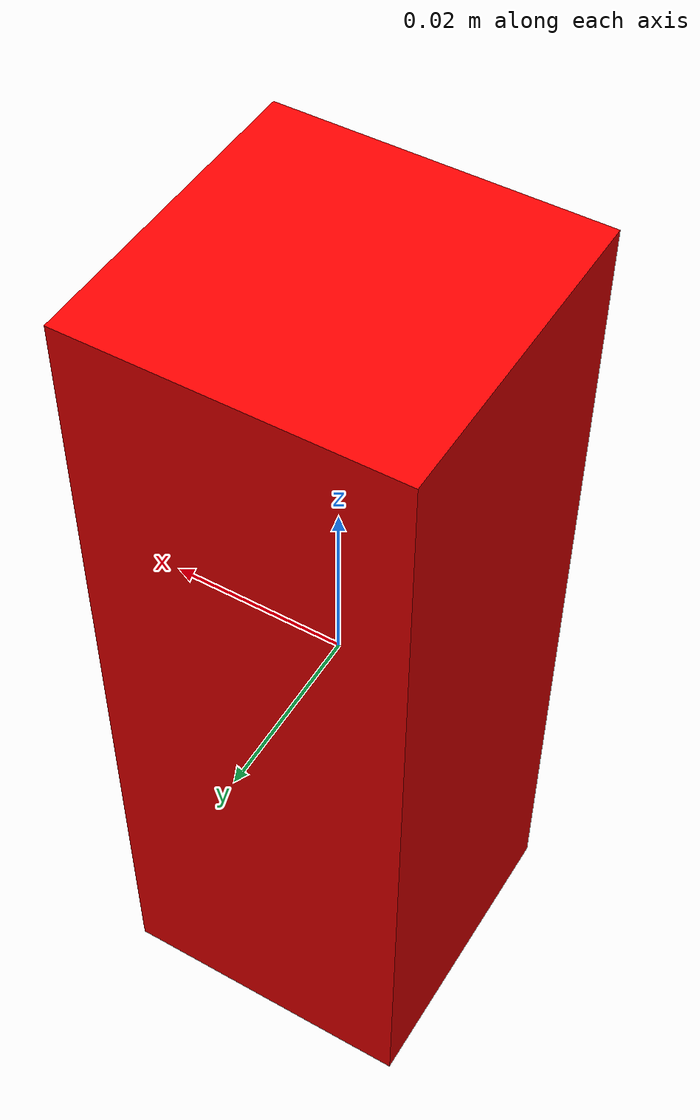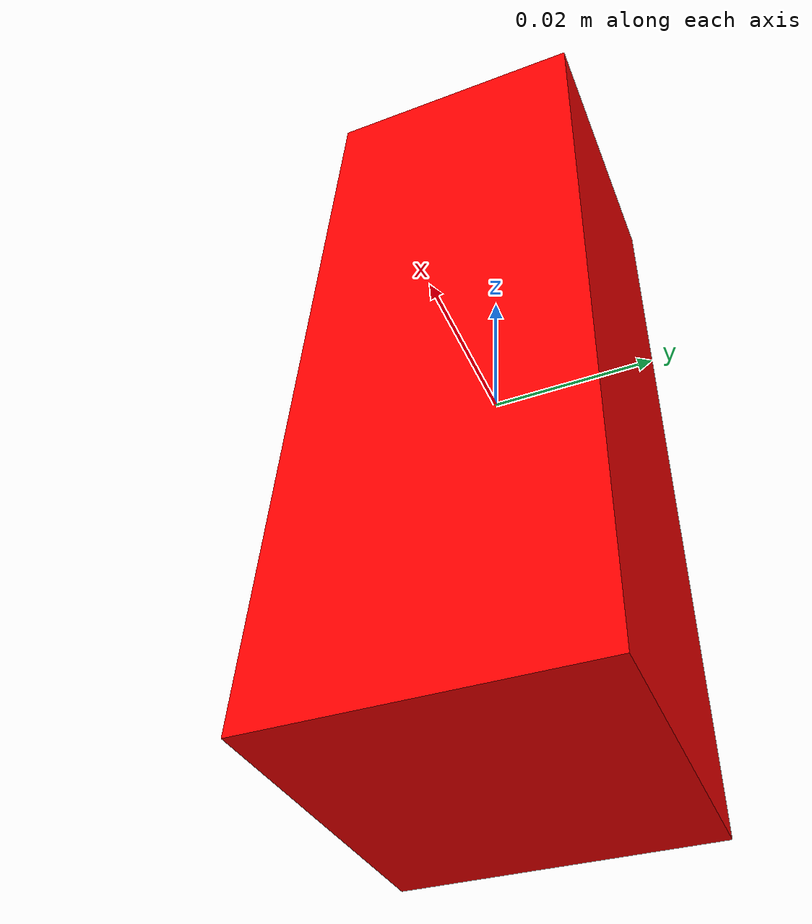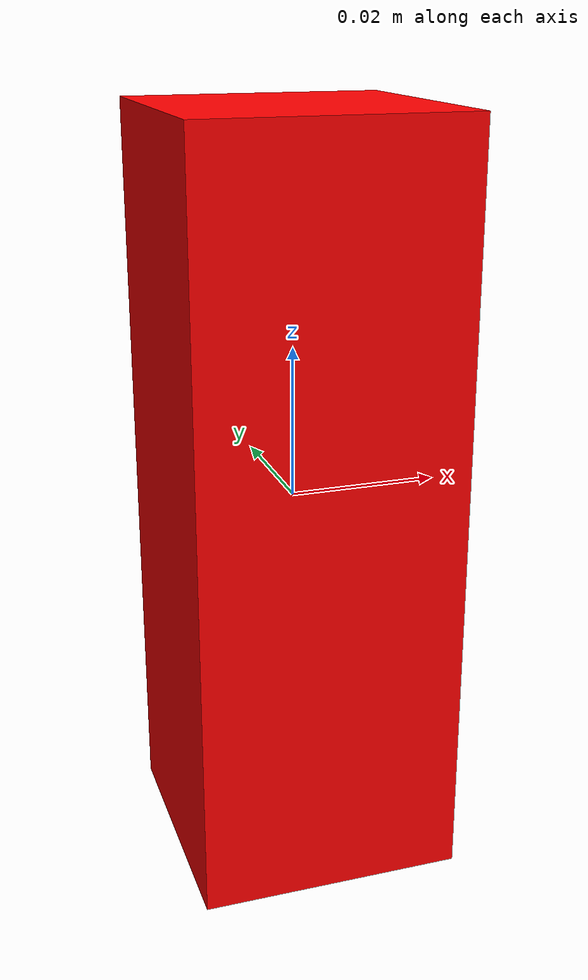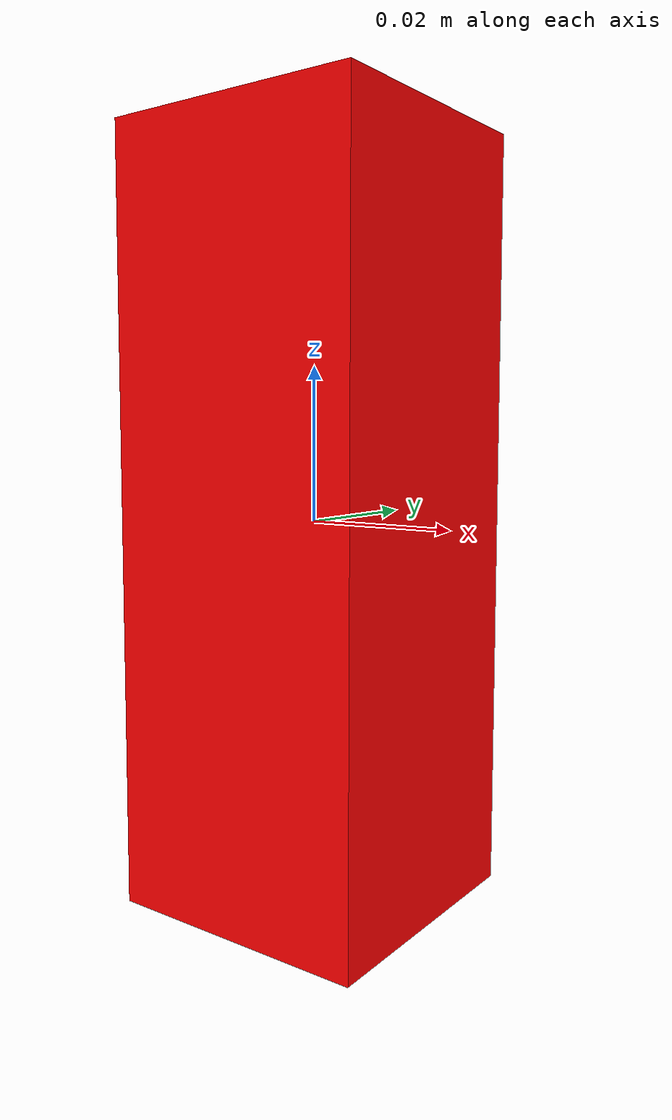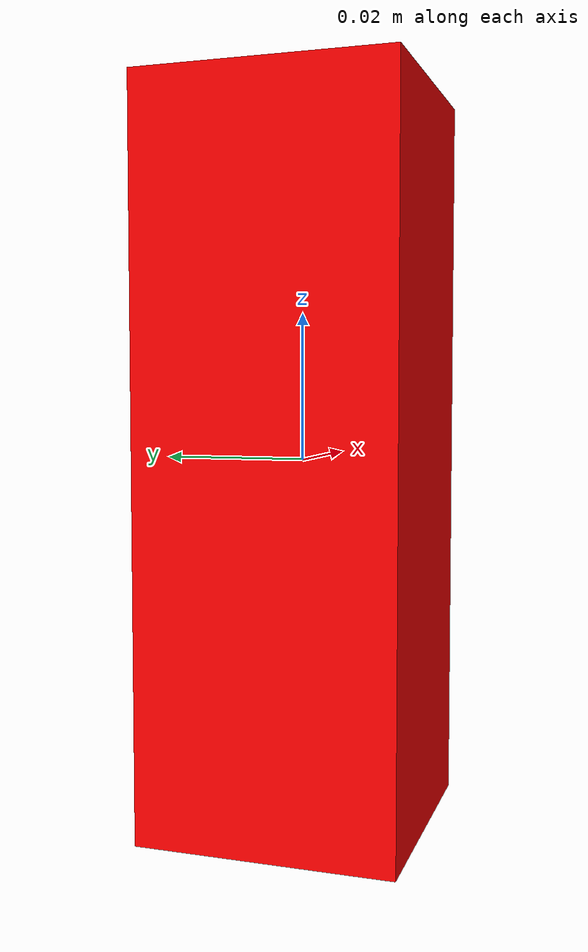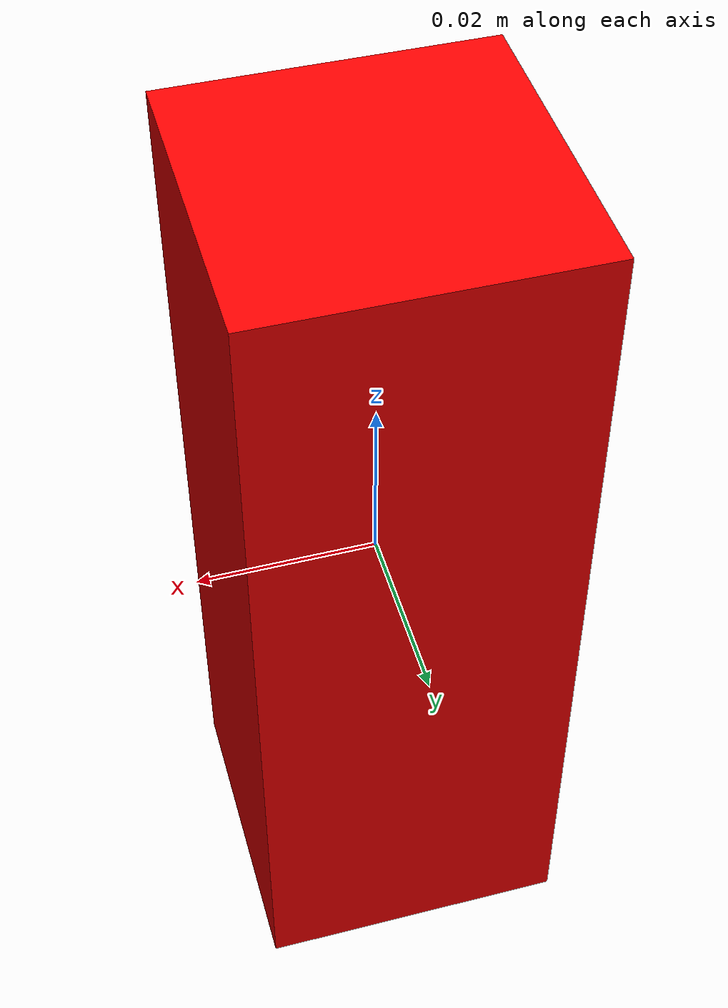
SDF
<?xml version="1.0" ?>
<sdf version="1.6">

  <model name="my_box">

    <static>false</static>

    <link name="box_link">
       <self_collide>true</self_collide>
       <gravity>true</gravity>
      <kinematic>false</kinematic>
      <inertial>
        <mass>0.3</mass>

        <inertia>
          <ixx>0.000125</ixx>
          <iyy>0.000125</iyy>
          <izz>0.000125</izz>
          <ixy>0.0</ixy>
          <ixz>0.0</ixz>
          <iyz>0.0</iyz>
        </inertia>
      </inertial>

      <collision name="collision">

        <max_contacts>20</max_contacts>

        <geometry>
          <box>
            <size>0.035 0.035 0.045</size>
          </box>
        </geometry>

        <surface>

          <friction>
            <ode>
              <mu>300.0</mu>
              <mu2>300.0</mu2>
            </ode>
          </friction>

          <contact>
            <ode>
              <soft_cfm>0.0001</soft_cfm>
              <soft_erp>0.8</soft_erp>
              <kp>100000</kp>
              <kd>300</kd>
            </ode>
          </contact>

        </surface>

      </collision>

      <visual name="visual">

        <geometry>
          <box>
            <size>0.035 0.035 0.1</size>
          </box>
        </geometry>

        <material>
          <ambient>1 0 0 1</ambient>
          <diffuse>1 0 0 1</diffuse>
        </material>

      </visual>

    </link>

  </model>

</sdf>
